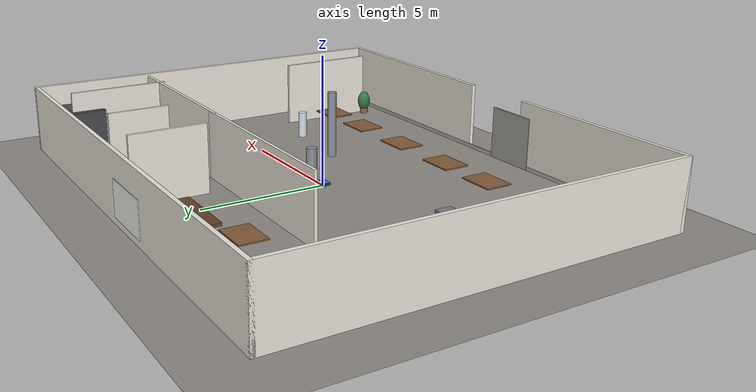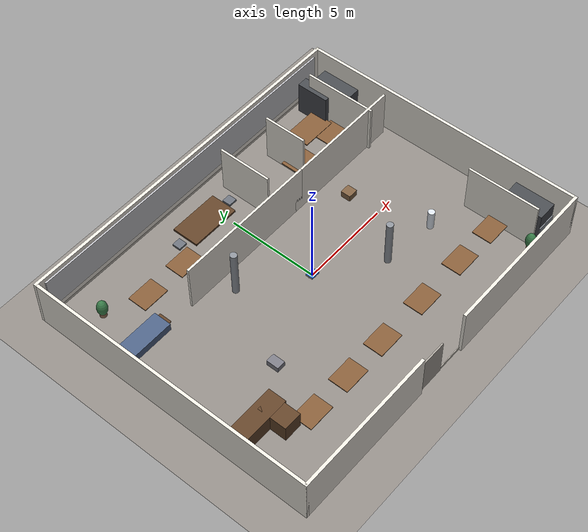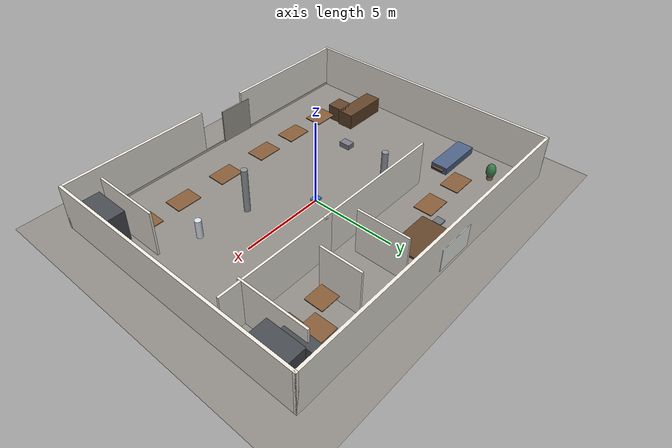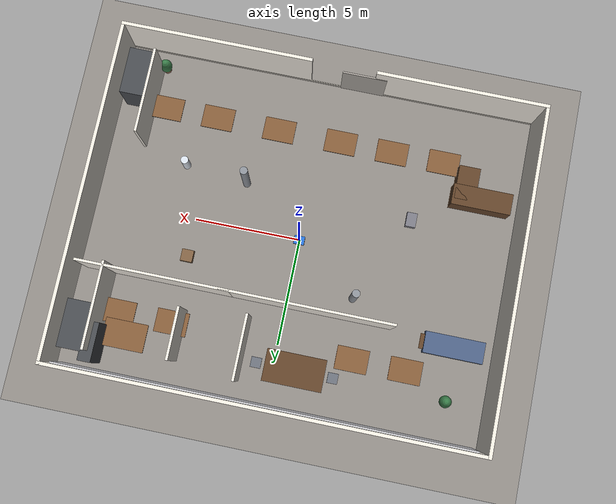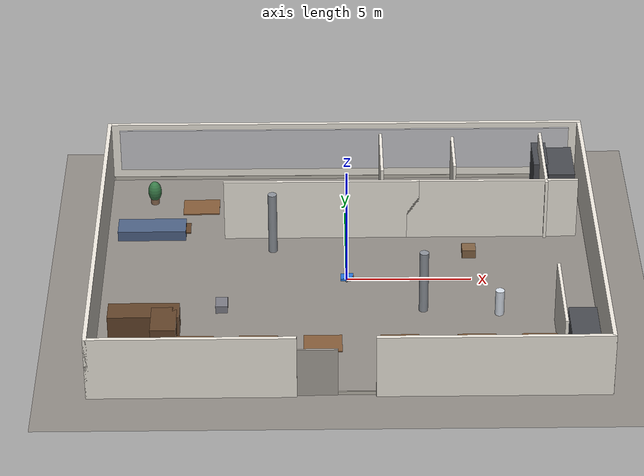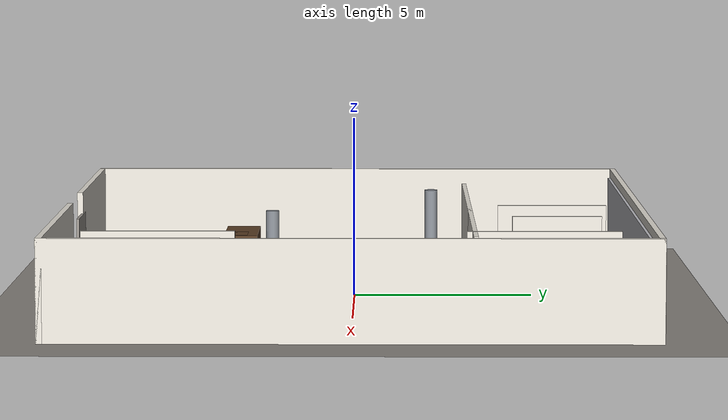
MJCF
<mujoco model="diff_drive_office_scene">
  <include file="robot.xml"/>
  <include file="environments/office_floor.xml"/>

  <option timestep="0.005" integrator="implicitfast"/>

  <visual>
    <headlight diffuse="0.35 0.35 0.35" ambient="0.18 0.18 0.20"/>
    <rgba haze="0.06 0.08 0.10 1"/>
    <global azimuth="155" elevation="-18" offwidth="1280" offheight="720"/>
    <map znear="0.02" zfar="40" force="0.1"/>
    <quality shadowsize="2048"/>
  </visual>

  <asset>
    <texture type="skybox" builtin="gradient" rgb1="0.82 0.86 0.92" rgb2="0.55 0.60 0.68" width="512" height="3072"/>
  </asset>
</mujoco>

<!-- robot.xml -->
<!-- Differential-drive mobile base (+X forward, +Y left, +Z up). Included by scene.xml. -->
<mujoco>
  <compiler angle="degree"/>

  <default>
    <joint damping="0.2"/>
    <geom friction="1.2 0.02 0.002" condim="3"/>
  </default>

  <worldbody>
    <body name="base_link" pos="0 0 0.12">
      <!-- Planar base: world x/y translation + yaw. -->
      <joint name="slide_x" type="slide" axis="1 0 0"/>
      <joint name="slide_y" type="slide" axis="0 1 0"/>
      <joint name="yaw" type="hinge" axis="0 0 1"/>

      <geom name="chassis" type="box" size="0.25 0.2 0.05" mass="8" rgba="0.15 0.45 0.85 1"/>
      <!-- Asymmetric cues: orange front / dark rear -->
      <geom name="front_bumper" type="box" pos="0.24 0 0" size="0.02 0.18 0.04"
        rgba="1 0.45 0.1 1" contype="0" conaffinity="0"/>
      <geom name="rear_bumper" type="box" pos="-0.24 0 0" size="0.02 0.18 0.04"
        rgba="0.2 0.2 0.2 1" contype="0" conaffinity="0"/>
      <geom name="front_light" type="sphere" pos="0.23 0 0.02" size="0.015"
        rgba="0.2 0.9 0.3 1" contype="0" conaffinity="0"/>
      <geom name="rear_light" type="sphere" pos="-0.23 0 0.02" size="0.015"
        rgba="0.9 0.15 0.15 1" contype="0" conaffinity="0"/>

      <site name="imu_link" pos="0 0 0" size="0.01"/>

      <body name="lidar_link" pos="0 0 0.09">
        <geom name="lidar_mast" type="cylinder" size="0.015 0.03" rgba="0.35 0.35 0.38 1"
          contype="0" conaffinity="0"/>
        <geom name="lidar_head" type="cylinder" size="0.04 0.015" pos="0 0 0.04"
          rgba="0.1 0.1 0.12 1" contype="0" conaffinity="0"/>
        <site name="lidar" pos="0 0 0.04" size="0.01"/>
      </body>

      <body name="camera_link" pos="0.2 0 0.03">
        <geom name="camera_housing" type="box" size="0.025 0.035 0.02" rgba="0.15 0.15 0.18 1"
          contype="0" conaffinity="0"/>
        <!-- Looks along body +X (forward). -->
        <camera name="front_camera" pos="0.02 0 0" xyaxes="0 -1 0 0 0 1" fovy="70"/>
      </body>

      <body name="left_wheel" pos="0 0.16 -0.07">
        <joint name="left_wheel_joint" type="hinge" axis="0 1 0"/>
        <geom name="left_wheel_geom" type="cylinder" size="0.05 0.02" mass="0.5"
          quat="0.707107 0.707107 0 0" contype="0" conaffinity="0" rgba="0.15 0.15 0.15 1"/>
      </body>

      <body name="right_wheel" pos="0 -0.16 -0.07">
        <joint name="right_wheel_joint" type="hinge" axis="0 1 0"/>
        <geom name="right_wheel_geom" type="cylinder" size="0.05 0.02" mass="0.5"
          quat="0.707107 0.707107 0 0" contype="0" conaffinity="0" rgba="0.15 0.15 0.15 1"/>
      </body>

      <body name="caster" pos="-0.22 0 -0.09">
        <geom name="caster_geom" type="sphere" size="0.03" mass="0.1" contype="0" conaffinity="0"
          rgba="0.5 0.5 0.5 1"/>
      </body>
    </body>
  </worldbody>

  <actuator>
    <velocity name="drive_x" joint="slide_x" kv="80" ctrlrange="-2 2"/>
    <velocity name="drive_y" joint="slide_y" kv="80" ctrlrange="-2 2"/>
    <velocity name="drive_yaw" joint="yaw" kv="40" ctrlrange="-3 3"/>
  </actuator>

  <sensor>
    <accelerometer name="imu_accel" site="imu_link"/>
    <gyro name="imu_gyro" site="imu_link"/>
  </sensor>
</mujoco>

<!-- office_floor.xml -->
<!-- Open-plan office ~20×16 m. -->
<mujoco>
  <default>
    <geom friction="1.0 0.005 0.0001" condim="3"/>
  </default>

  <asset>
    <texture type="2d" name="carpet_tex" builtin="checker" mark="none"
      rgb1="0.58 0.56 0.54" rgb2="0.54 0.52 0.50" width="256" height="256"/>
    <material name="carpet" texture="carpet_tex" texuniform="true" texrepeat="14 12" reflectance="0.08"/>
    <material name="wall" rgba="0.93 0.91 0.87 1" reflectance="0.04"/>
    <material name="baseboard" rgba="0.72 0.70 0.66 1"/>
    <material name="window_glass" rgba="0.72 0.82 0.92 0.35" reflectance="0.25"/>
    <material name="window_frame" rgba="0.78 0.78 0.80 1"/>
    <material name="door_frame" rgba="0.65 0.63 0.60 1"/>
    <material name="oak" rgba="0.52 0.36 0.22 1" reflectance="0.12"/>
    <material name="walnut" rgba="0.38 0.26 0.16 1" reflectance="0.10"/>
    <material name="metal_dark" rgba="0.28 0.29 0.31 1" reflectance="0.35"/>
    <material name="metal_light" rgba="0.55 0.57 0.60 1" reflectance="0.40"/>
    <material name="fabric_gray" rgba="0.42 0.44 0.48 1" reflectance="0.06"/>
    <material name="fabric_blue" rgba="0.30 0.38 0.52 1" reflectance="0.06"/>
    <material name="partition_low" rgba="0.78 0.80 0.82 1" reflectance="0.08"/>
    <material name="partition_glass" rgba="0.75 0.82 0.88 0.25" reflectance="0.30"/>
    <material name="plant" rgba="0.22 0.48 0.28 1"/>
    <material name="plant_pot" rgba="0.55 0.42 0.32 1"/>
    <material name="screen" rgba="0.08 0.10 0.12 1" reflectance="0.6"/>
  </asset>

  <worldbody>
    <light pos="0 0 2.6" dir="0 0 -1" directional="false" diffuse="0.75 0.75 0.72" castshadow="false"/>
    <light pos="-5 3 2.6" dir="0 0 -1" directional="false" diffuse="0.65 0.65 0.62" castshadow="false"/>
    <light pos="5 -3 2.6" dir="0 0 -1" directional="false" diffuse="0.65 0.65 0.62" castshadow="false"/>
    <light pos="0 0 4" dir="0.1 0.05 -1" directional="true" diffuse="0.35 0.35 0.38"/>

    <geom name="office_floor" type="plane" size="12 10 0.1" material="carpet"/>

    <!-- Perimeter -->
    <geom name="wall_south_w" type="box" pos="-6 -7.92 1.35" size="4 0.08 1.35" material="wall"/>
    <geom name="wall_south_e" type="box" pos="5.5 -7.92 1.35" size="4.5 0.08 1.35" material="wall"/>
    <geom name="door_frame_s" type="box" pos="-1.5 -7.85 1.05" size="1.05 0.04 1.05" material="door_frame" contype="0" conaffinity="0"/>
    <geom name="wall_north" type="box" pos="0 7.92 1.35" size="10 0.08 1.35" material="wall"/>
    <geom name="wall_west" type="box" pos="-9.92 0 1.35" size="0.08 8 1.35" material="wall"/>
    <geom name="wall_east" type="box" pos="9.92 0 1.35" size="0.08 8 1.35" material="wall"/>
    <geom name="base_s" type="box" pos="0 -7.85 0.08" size="9.8 0.02 0.08" material="baseboard" contype="0" conaffinity="0"/>
    <geom name="base_n" type="box" pos="0 7.85 0.08" size="9.8 0.02 0.08" material="baseboard" contype="0" conaffinity="0"/>

    <geom name="win_n_1" type="box" pos="-5 7.84 1.5" size="2.2 0.03 0.9" material="window_glass" contype="0" conaffinity="0"/>
    <geom name="win_n_2" type="box" pos="0 7.84 1.5" size="2.5 0.03 0.9" material="window_glass" contype="0" conaffinity="0"/>
    <geom name="win_n_3" type="box" pos="5 7.84 1.5" size="2.2 0.03 0.9" material="window_glass" contype="0" conaffinity="0"/>
    <geom name="win_n_frame" type="box" pos="0 7.80 1.5" size="9.5 0.04 0.95" material="window_frame" contype="0" conaffinity="0"/>

    <!-- Meeting room (north, y>3) -->
    <geom name="meet_wall_s" type="box" pos="-1 3.2 1.35" size="4.0 0.06 1.35" material="wall"/>
    <geom name="meet_wall_e" type="box" pos="1.5 5.5 1.35" size="0.06 1.5 1.35" material="wall"/>
    <geom name="meet_door" type="box" pos="-0.2 3.2 1.0" size="1.0 0.04 1.0" material="partition_glass" contype="0" conaffinity="0"/>
    <body name="meeting_room" pos="-1 6.0 0">
      <geom name="meet_table" type="box" pos="0 0 0.38" size="1.4 0.75 0.06" material="walnut"/>
      <geom name="meet_chair_1_seat" type="box" pos="-1.8 0 0.24" size="0.24 0.24 0.06" material="fabric_gray"/>
      <geom name="meet_chair_2_seat" type="box" pos="1.8 0 0.24" size="0.24 0.24 0.06" material="fabric_gray"/>
      <geom name="meet_whiteboard" type="box" pos="0 2.0 1.0" size="1.2 0.03 0.7" rgba="0.95 0.96 0.94 1" contype="0" conaffinity="0"/>
    </body>

    <!-- Manager office (north-east) -->
    <geom name="mgr_wall_s" type="box" pos="6 3.2 1.35" size="3.5 0.06 1.35" material="wall"/>
    <geom name="mgr_wall_w" type="box" pos="4.5 5.5 1.35" size="0.06 1.2 1.35" material="wall"/>
    <body name="mgr_office" pos="7 6.0 0">
      <geom name="mgr_desk_top" type="box" pos="0 0 0.38" size="1.0 0.65 0.03" material="oak"/>
      <geom name="mgr_bookcase" type="box" pos="1.2 0.6 0.95" size="0.30 0.9 0.95" material="metal_dark"/>
    </body>

    <!-- South workstations -->
    <body name="ws_row_s" pos="0 -5.0 0">
      <geom name="desk_1_top" type="box" pos="-6 0 0.36" size="0.75 0.55 0.025" material="oak"/>
      <geom name="desk_2_top" type="box" pos="-3.5 0 0.36" size="0.75 0.55 0.025" material="oak"/>
      <geom name="desk_3_top" type="box" pos="-1 0 0.36" size="0.75 0.55 0.025" material="oak"/>
      <geom name="desk_4_top" type="box" pos="2 0 0.36" size="0.75 0.55 0.025" material="oak"/>
      <geom name="desk_5_top" type="box" pos="5 0 0.36" size="0.75 0.55 0.025" material="oak"/>
      <geom name="desk_6_top" type="box" pos="7.5 0 0.36" size="0.75 0.55 0.025" material="oak"/>
    </body>

    <!-- North workstations (y > 2.2) -->
    <body name="ws_row_n" pos="0 5.0 0">
      <geom name="desk_7_top" type="box" pos="-6 0 0.36" size="0.75 0.55 0.025" material="oak"/>
      <geom name="desk_8_top" type="box" pos="-3.5 0 0.36" size="0.75 0.55 0.025" material="oak"/>
      <geom name="desk_9_top" type="box" pos="5 0 0.36" size="0.75 0.55 0.025" material="oak"/>
      <geom name="desk_10_top" type="box" pos="7.5 0 0.36" size="0.75 0.55 0.025" material="oak"/>
    </body>

    <!-- West lobby -->
    <body name="reception" pos="-8 -3.5 0">
      <geom name="recep_main" type="box" pos="0 0 0.48" size="1.4 0.5 0.48" material="walnut"/>
      <geom name="recep_return" type="box" pos="0.8 -0.6 0.48" size="0.5 0.8 0.48" material="walnut"/>
    </body>
    <body name="lounge" pos="-8 3.5 0">
      <geom name="sofa_base" type="box" pos="0 0 0.22" size="1.4 0.5 0.22" material="fabric_blue"/>
      <geom name="coffee_table_top" type="box" pos="1.1 0 0.28" size="0.5 0.35 0.025" material="walnut" contype="0" conaffinity="0"/>
    </body>

    <!-- East storage -->
    <geom name="storage_wall_n" type="box" pos="8.2 5.0 1.35" size="0.06 2.0 1.35" material="wall"/>
    <geom name="storage_wall_s" type="box" pos="8.2 -5.0 1.35" size="0.06 2.0 1.35" material="wall"/>
    <body name="storage" pos="9.0 0 0">
      <geom name="shelf_a_frame" type="box" pos="0 6 0.95" size="0.55 1.1 0.95" material="metal_dark"/>
      <geom name="shelf_b_frame" type="box" pos="0 -6 0.95" size="0.55 1.1 0.95" material="metal_dark"/>
      <geom name="copier_body" type="box" pos="0 -6.5 0.55" size="0.55 0.65 0.55" material="metal_light"/>
    </body>

    <!-- Columns -->
    <geom name="column_1" type="cylinder" pos="-3 2.2 1.35" size="0.18 1.35" material="metal_light"/>
    <geom name="column_2" type="cylinder" pos="3 -2.2 1.35" size="0.18 1.35" material="metal_light"/>

    <body name="plant_a" pos="-8 6 0">
      <geom name="plant_a_pot" type="cylinder" size="0.18 0.22" material="plant_pot"/>
      <geom name="plant_a_leaf" type="ellipsoid" pos="0 0 0.55" size="0.28 0.28 0.45" material="plant" contype="0" conaffinity="0"/>
    </body>
    <body name="plant_b" pos="8 -7 0">
      <geom name="plant_b_pot" type="cylinder" size="0.18 0.22" material="plant_pot"/>
      <geom name="plant_b_leaf" type="ellipsoid" pos="0 0 0.55" size="0.28 0.28 0.45" material="plant" contype="0" conaffinity="0"/>
    </body>

    <!-- Clutter -->
    <geom name="box_delivery" type="box" pos="5 1.8 0.18" size="0.28 0.28 0.18" rgba="0.50 0.38 0.26 1"/>
    <geom name="box_archive" type="box" pos="-5 -2.0 0.16" size="0.24 0.34 0.16" rgba="0.48 0.48 0.52 1"/>
    <geom name="water_cooler" type="cylinder" pos="6 -2.5 0.55" size="0.18 0.55" rgba="0.85 0.88 0.92 1"/>
  </worldbody>
</mujoco>
